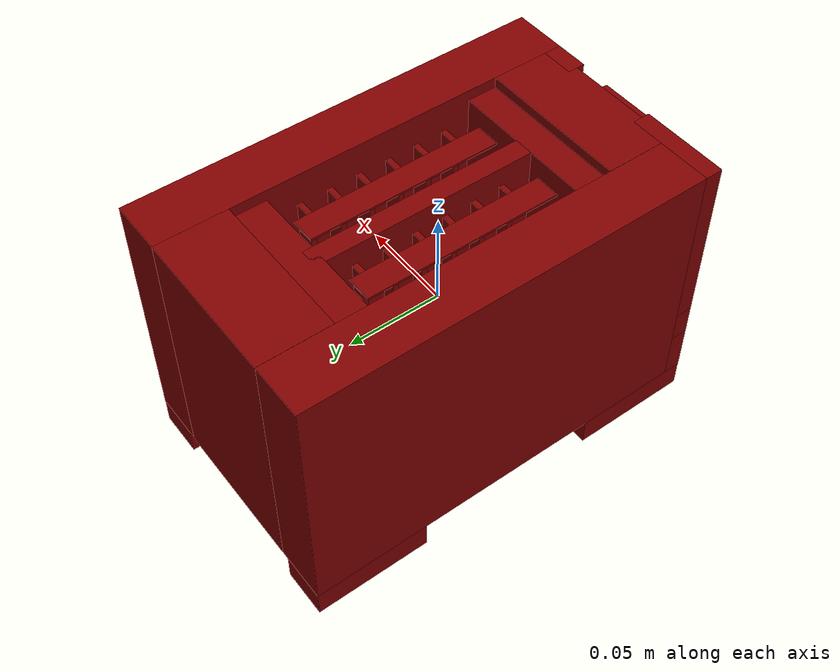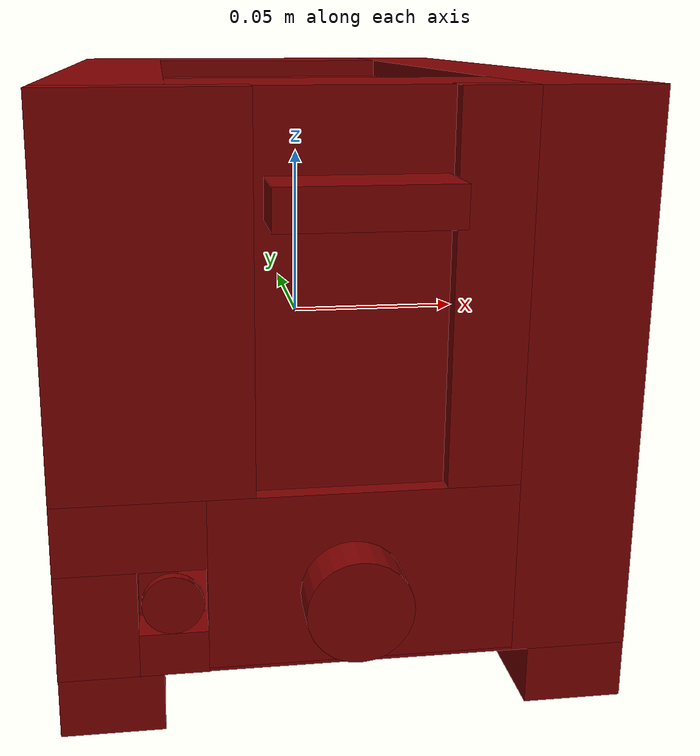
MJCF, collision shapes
<?xml version='1.0' encoding='UTF-8'?>
<mujoco model="model">
  <compiler angle="radian"/>
  <asset>
    <mesh file="visuals/Body001.obj" name="Body001_vis"/>
    <mesh file="visuals/Body002.obj" name="Body002_vis"/>
    <mesh file="visuals/Button001.obj" name="Button001_vis"/>
    <mesh file="visuals/Knob001.obj" name="Knob001_vis"/>
    <mesh file="visuals/Lever001.obj" name="Lever001_vis"/>
    <texture file="visuals/T_BC001.png" name="Body001_material" type="2d"/>
    <material name="Body001_material" rgba="1 1 1 1.0" texture="Body001_material" shininess="0.4" specular="0.2"/>
    <texture file="visuals/T_BC001.png" name="Body002_material" type="2d"/>
    <material name="Body002_material" rgba="1 1 1 1.0" texture="Body002_material" shininess="0.5" specular="1"/>
    <texture file="visuals/T_BC001.png" name="Button001_material" type="2d"/>
    <material name="Button001_material" rgba="1 1 1 1.0" texture="Button001_material" shininess="0.5" specular="1"/>
    <texture file="visuals/T_BC001.png" name="Knob001_material" type="2d"/>
    <material name="Knob001_material" rgba="1 1 1 1.0" texture="Knob001_material" shininess="0.5" specular="1"/>
    <texture file="visuals/T_BC001.png" name="Lever001_material" type="2d"/>
    <material name="Lever001_material" rgba="1 1 1 1.0" texture="Lever001_material" shininess="0.5" specular="1"/>
  </asset>
  <default>
    <default class="visual">
      <geom conaffinity="0" contype="0" group="1" type="mesh"/>
    </default>
    <default class="collision">
      <geom group="0" rgba="0.5 0 0 0.5"/>
    </default>
    <default class="spawn">
      <geom group="0" rgba="1 1 1 0.5" contype="0" conaffinity="0"/>
      <site group="0" rgba="1 1 1 0.5"/>
    </default>
    <default class="region">
      <geom group="1" conaffinity="0" contype="0" rgba="0 1 0 0"/>
    </default>
  </default>
  <worldbody>
    <body>
      <body name="object">
        <geom mesh="Body001_vis" type="mesh" solimp="0.998 0.998 0.001" solref="0.001 1" density="100" friction="0.95 0.3 0.1" class="visual" material="Body001_material"/>
        <geom class="collision" type="box" pos="-0.054058097302913666 0.012248861603438854 0.007250648457556963" size="0.014198090881109238 0.10610879957675934 0.0673801526427269" quat="1.0 0.0 0.0 0.0"/>
        <geom class="collision" type="box" pos="0.05403152480721474 0.007646962068974972 0.0073302132077515125" size="0.014168388210237026 0.11071065068244934 0.06730058044195175" quat="1.0 0.0 0.0 0.0"/>
        <geom class="collision" type="box" pos="-0.00014292518608272076 0.007181908003985882 0.005390962120145559" size="0.005161088425666094 0.060507796704769135 0.06351984292268753" quat="1.0 0.0 0.0 0.0"/>
        <geom class="collision" type="box" pos="-0.00014292554988060147 0.07610111683607101 0.005390962120145559" size="0.04169277474284172 0.01321240235120058 0.06351986527442932" quat="1.0 0.0 0.0 0.0"/>
        <geom class="collision" type="box" pos="-0.00014291549450717866 -0.05728115886449814 0.005390962120145559" size="0.04169277474284172 0.009339340962469578 0.06351988762617111" quat="1.0 0.0 0.0 0.0"/>
        <geom class="collision" type="box" pos="3.567295061657205e-05 0.0999014601111412 0.007250920869410038" size="0.039819009602069855 0.018553508445620537 0.0673789456486702" quat="1.0 0.0 0.0 0.0"/>
        <geom class="collision" type="box" pos="3.5686556657310575e-05 -0.08127980679273605 0.021268600597977638" size="0.039819031953811646 0.017615322023630142 0.05336173623800278" quat="1.0 0.0 0.0 0.0"/>
        <geom class="collision" type="box" pos="3.567488965927623e-05 -0.008306767791509628 -0.05620523542165756" size="0.03981994464993477 0.09465993940830231 0.003836646443232894" quat="1.0 0.0 0.0 0.0"/>
        <geom class="collision" type="box" pos="-0.0559338741004467 0.08797924220561981 -0.06468595564365387" size="0.01221300195902586 0.03031495027244091 0.00995449535548687" quat="1.0 0.0 0.0 0.0"/>
        <geom class="collision" type="box" pos="-0.0559338741004467 -0.07157101482152939 -0.0673849806189537" size="0.012213002890348434 0.03144153207540512 0.0072554717771708965" quat="1.0 0.0 0.0 0.0"/>
        <geom class="collision" type="box" pos="0.05606897175312042 0.08797924220561981 -0.06468595564365387" size="0.012130937539041042 0.03031495027244091 0.00995449535548687" quat="1.0 0.0 0.0 0.0"/>
        <geom class="collision" type="box" pos="0.05606897175312042 -0.07151993364095688 -0.06468595564365387" size="0.012130937539041042 0.03139045462012291 0.00995449535548687" quat="1.0 0.0 0.0 0.0"/>
        <geom class="collision" type="box" pos="-0.058749664574861526 -0.09846007823944092 -0.04691852629184723" size="0.009506523609161377 0.004601903259754181 0.013210979290306568" quat="1.0 0.0 0.0 0.0"/>
        <geom class="collision" type="box" pos="-0.04120135307312012 -0.09846007823944092 -0.05483756214380264" size="0.008041787892580032 0.004601902328431606 0.005291944835335016" quat="1.0 0.0 0.0 0.0"/>
        <geom class="collision" type="box" pos="0.031138144433498383 -0.09846007823944092 0.028948310762643814" size="0.008724991232156754 0.004601900931447744 0.04568248614668846" quat="1.0 0.0 0.0 0.0"/>
        <geom class="collision" type="box" pos="-0.045075803995132446 -0.09846007823944092 0.028948310762643814" size="0.023180382326245308 0.0046018995344638824 0.04568248614668846" quat="1.0 0.0 0.0 0.0"/>
        <geom class="collision" type="box" pos="-0.050707876682281494 -0.09846007823944092 -0.02522086352109909" size="0.01754831150174141 0.004601898603141308 0.008486684411764145" quat="1.0 0.0 0.0 0.0"/>
        <geom class="collision" type="box" pos="0.0053892359137535095 -0.09846007823944092 -0.0379478894174099" size="0.038548801094293594 0.004601897206157446 0.02121371030807495" quat="1.0 0.0 0.0 0.0"/>
        <body name="Body002">
          <geom mesh="Body002_vis" type="mesh" solimp="0.998 0.998 0.001" solref="0.001 1" density="100" friction="0.95 0.3 0.1" class="visual" material="Body002_material"/>
          <geom class="collision" type="box" pos="-0.034467633813619614 0.01671399176120758 0.0036627743393182755" size="0.004844016395509243 0.0014521359698846936 0.054321810603141785" quat="1.0 0.0 0.0 0.0"/>
          <geom class="collision" type="box" pos="-0.034467633813619614 0.03261162340641022 0.0036627743393182755" size="0.004844016395509243 0.0014521359698846936 0.054321810603141785" quat="1.0 0.0 0.0 0.0"/>
          <geom class="collision" type="box" pos="-0.034467633813619614 0.04865378141403198 0.0036627743393182755" size="0.004844016395509243 0.0014521359698846936 0.054321810603141785" quat="1.0 0.0 0.0 0.0"/>
          <geom class="collision" type="box" pos="-0.034467633813619614 0.0003827866166830063 0.0036627743393182755" size="0.004844016395509243 0.0014521359698846936 0.054321810603141785" quat="1.0 0.0 0.0 0.0"/>
          <geom class="collision" type="box" pos="-0.034467633813619614 -0.01551484689116478 0.0036627743393182755" size="0.004844016395509243 0.0014521359698846936 0.054321810603141785" quat="1.0 0.0 0.0 0.0"/>
          <geom class="collision" type="box" pos="-0.034467633813619614 -0.031557001173496246 0.0036627743393182755" size="0.004844016395509243 0.0014521359698846936 0.054321810603141785" quat="1.0 0.0 0.0 0.0"/>
          <geom class="collision" type="box" pos="-0.007297132164239883 0.01671399362385273 0.0036627743393182755" size="0.004844016395509243 0.0014521359698846936 0.054321810603141785" quat="1.0 0.0 0.0 0.0"/>
          <geom class="collision" type="box" pos="-0.007297132164239883 0.032611627131700516 0.0036627743393182755" size="0.004844016395509243 0.0014521359698846936 0.054321810603141785" quat="1.0 0.0 0.0 0.0"/>
          <geom class="collision" type="box" pos="-0.007297132164239883 0.04865378513932228 0.0036627743393182755" size="0.004844016395509243 0.0014521359698846936 0.054321810603141785" quat="1.0 0.0 0.0 0.0"/>
          <geom class="collision" type="box" pos="-0.007297132164239883 0.00038278865395113826 0.0036627743393182755" size="0.004844016395509243 0.0014521359698846936 0.054321810603141785" quat="1.0 0.0 0.0 0.0"/>
          <geom class="collision" type="box" pos="-0.007297132164239883 -0.01551484502851963 0.0036627743393182755" size="0.004844016395509243 0.0014521359698846936 0.054321810603141785" quat="1.0 0.0 0.0 0.0"/>
          <geom class="collision" type="box" pos="-0.007297132164239883 -0.03155699744820595 0.0036627743393182755" size="0.004844016395509243 0.0014521359698846936 0.054321810603141785" quat="1.0 0.0 0.0 0.0"/>
          <geom class="collision" type="box" pos="0.0074443090707063675 0.015027882531285286 0.0036627743393182755" size="0.004844016395509243 0.0014521359698846936 0.054321810603141785" quat="1.0 0.0 0.0 0.0"/>
          <geom class="collision" type="box" pos="0.0074443090707063675 0.030925514176487923 0.0036627743393182755" size="0.004844016395509243 0.0014521359698846936 0.054321810603141785" quat="1.0 0.0 0.0 0.0"/>
          <geom class="collision" type="box" pos="0.0074443090707063675 0.04696767404675484 0.0036627743393182755" size="0.004844016395509243 0.0014521359698846936 0.054321810603141785" quat="1.0 0.0 0.0 0.0"/>
          <geom class="collision" type="box" pos="0.0074443090707063675 -0.0013033227296546102 0.0036627743393182755" size="0.004844016395509243 0.0014521359698846936 0.054321810603141785" quat="1.0 0.0 0.0 0.0"/>
          <geom class="collision" type="box" pos="0.0074443090707063675 -0.017200956121087074 0.0036627743393182755" size="0.004844016395509243 0.0014521359698846936 0.054321810603141785" quat="1.0 0.0 0.0 0.0"/>
          <geom class="collision" type="box" pos="0.0074443090707063675 -0.03324310854077339 0.0036627743393182755" size="0.004844016395509243 0.0014521359698846936 0.054321810603141785" quat="1.0 0.0 0.0 0.0"/>
          <geom class="collision" type="box" pos="0.034846048802137375 0.015027884393930435 0.0036627743393182755" size="0.004844016395509243 0.0014521359698846936 0.054321810603141785" quat="1.0 0.0 0.0 0.0"/>
          <geom class="collision" type="box" pos="0.034846048802137375 0.030925516039133072 0.0036627743393182755" size="0.004844016395509243 0.0014521359698846936 0.054321810603141785" quat="1.0 0.0 0.0 0.0"/>
          <geom class="collision" type="box" pos="0.034846048802137375 0.046967677772045135 0.0036627743393182755" size="0.004844016395509243 0.0014521359698846936 0.054321810603141785" quat="1.0 0.0 0.0 0.0"/>
          <geom class="collision" type="box" pos="0.034846048802137375 -0.0013033206341788173 0.0036627743393182755" size="0.004844016395509243 0.0014521359698846936 0.054321810603141785" quat="1.0 0.0 0.0 0.0"/>
          <geom class="collision" type="box" pos="0.034846048802137375 -0.017200954258441925 0.0036627743393182755" size="0.004844016395509243 0.0014521359698846936 0.054321810603141785" quat="1.0 0.0 0.0 0.0"/>
          <geom class="collision" type="box" pos="0.034846048802137375 -0.03324310481548309 0.0036627743393182755" size="0.004844016395509243 0.0014521359698846936 0.054321810603141785" quat="1.0 0.0 0.0 0.0"/>
        </body>
        <body name="Button001">
          <joint axis="0.0 1.0 0.0" pos="-0.0412297323346138 -0.1037987768650055 -0.04138311371207237" limited="true" name="Button001_joint" range="0.0 0.0015" type="slide" damping="1" frictionloss="1" armature=".01" stiffness="0.05"/>
          <geom mesh="Button001_vis" type="mesh" solimp="0.998 0.998 0.001" solref="0.001 1" density="100" friction="0.95 0.3 0.1" class="visual" material="Button001_material"/>
          <geom class="collision" type="cylinder" pos="-0.0412297323346138 -0.10375819355249405 -0.04138311743736267" size="0.007127244956791401 0.0010094705503433943" quat="0.7071068286895752 0.7071067690849304 -1.5700924318127872e-16 -5.9269340452702814e-24"/>
        </body>
        <body name="Knob001">
          <joint axis="0.0 1.0 0.0" pos="-8.774001616984606e-05 -0.11256509274244308 -0.03886783868074417" limited="true" name="Knob001_joint" range="0.0 4.625122517784973" type="hinge" damping="0.05" armature="0.001"/>
          <geom mesh="Knob001_vis" type="mesh" solimp="0.998 0.998 0.001" solref="0.001 1" density="100" friction="0.95 0.3 0.1" class="visual" material="Knob001_material"/>
          <geom class="collision" type="cylinder" pos="-8.775448077358305e-05 -0.11230763047933578 -0.03886783868074417" size="0.012197441421449184 0.005200802348554134" quat="0.7071068286895752 0.7071067690849304 -1.5700922994638892e-16 -1.528541381711287e-23"/>
        </body>
        <body name="Lever001">
          <joint axis="0.0 0.0 -1.0" pos="0.00040186112164519727 -0.09975706785917282 0.051276348531246185" limited="true" name="Lever001_joint" range="0.0 0.057999999999999996" type="slide" damping="1" frictionloss="1" armature=".01" stiffness="1" springref="-0.5"/>
          <geom mesh="Lever001_vis" type="mesh" solimp="0.998 0.998 0.001" solref="0.001 1" density="100" friction="0.95 0.3 0.1" class="visual" material="Lever001_material"/>
          <geom class="collision" type="box" pos="0.00040186112164519727 -0.11016561836004257 0.05127635598182678" size="0.02010287158191204 0.00819032359868288 0.0047017307952046394" quat="1.0 0.0 0.0 0.0" name="lever_knob"/>
          <geom class="collision" type="box" pos="-0.021464290097355843 0.00686856172978878 0.06225726753473282" size="0.006693053059279919 0.05096607655286789 0.0005657102447003126" quat="1.0 0.0 0.0 0.0" name="slotL_floor"/>
          <geom class="collision" type="box" pos="0.02071579359471798 0.00686856172978878 0.06225726753473282" size="0.006693053059279919 0.0509660579264164 0.000565709953662008" quat="1.0 0.0 0.0 0.0" name="slotR_floor"/>
        </body>
        <geom class="region" name="reg_main" type="box" pos="0.0 0.007628303021192551 0.0" size="0.06832119822502136 0.11072763800621033 0.07463090121746063"/>
      </body>
    </body>
  </worldbody>
  <actuator>
    <motor name="Button001_joint_actuator" joint="Button001_joint" gear="0.5"/>
    <motor name="Knob001_joint_actuator" joint="Knob001_joint" gear="10"/>
    <motor name="Lever001_joint_actuator" joint="Lever001_joint" gear="5"/>
  </actuator>
</mujoco>
